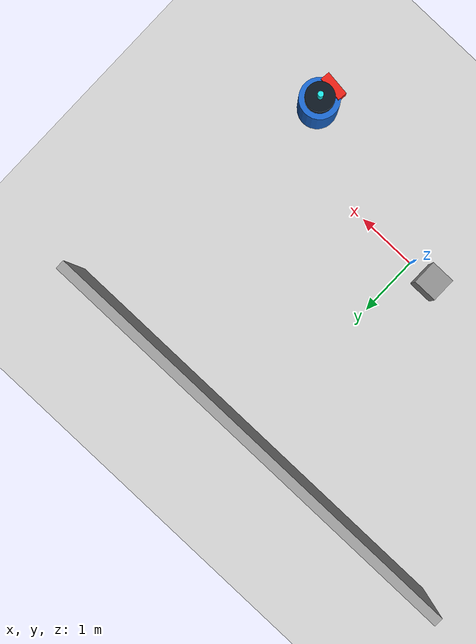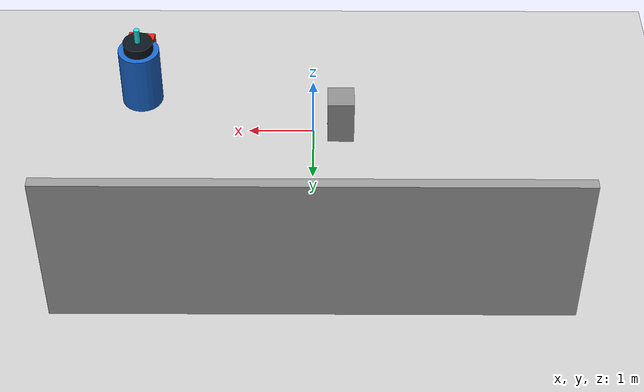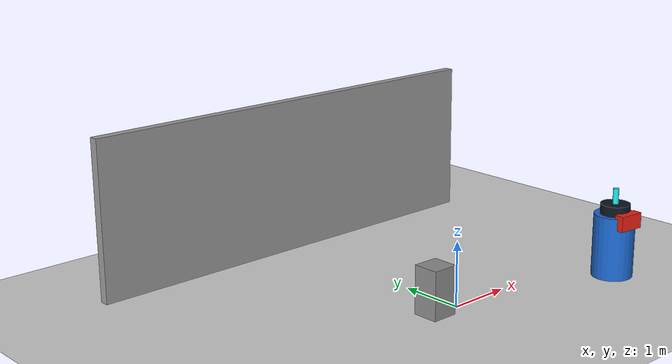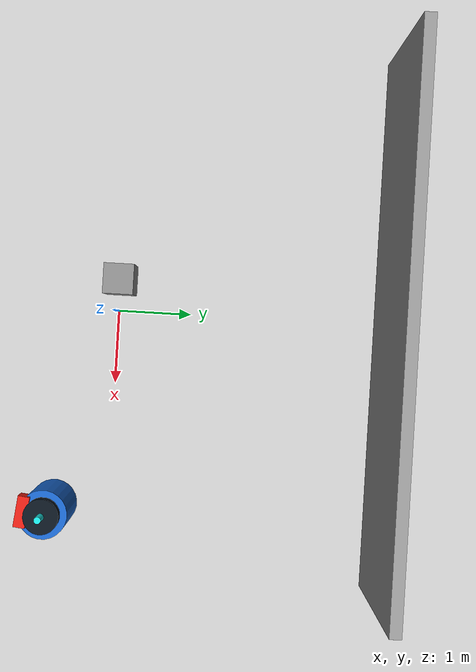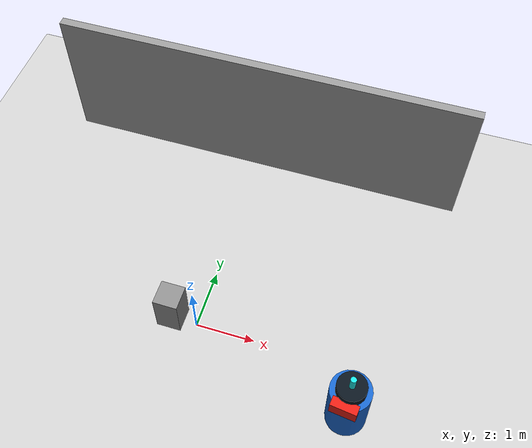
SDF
<sdf version="1.7">
 <world name="default">
  <plugin name="socnav_plugin" filename="libSocNavPlugin.so">
   <robot_name>robot</robot_name>
   <trajectory_file>/home/hunav_gz_classic_ws/SocNav3_trajectories/src6/000003845.json</trajectory_file>
   <human_slots>2</human_slots>
   <goal_angle_mesh>
    <angle_threshold>2.27777887545</angle_threshold>
    <uri>/home/hunav_gz_classic_ws/src/socnav_gazebo_reproducer/meshes/000003845_goal_angle_00.stl</uri>
   </goal_angle_mesh>
  </plugin>
  <light name="sun" type="directional">
   <pose>0 0 10 0 -0 0</pose>
   <diffuse>0.8 0.8 0.8 1</diffuse>
   <specular>0.2 0.2 0.2 1</specular>
   <attenuation>
    <range>1000</range>
    <constant>0.9</constant>
    <linear>0.01</linear>
    <quadratic>0.001</quadratic>
   </attenuation>
   <direction>-0.5 0.1 -0.9</direction>
   <spot><inner_angle>0</inner_angle><outer_angle>0</outer_angle><falloff>0</falloff></spot>
  </light>
  <model name="ground_plane">
   <static>1</static>
   <link name="link">
    <collision name="collision">
     <geometry><plane><normal>0 0 1</normal><size>100 100</size></plane></geometry>
     <surface><friction><ode><mu>100</mu><mu2>50</mu2></ode></friction></surface>
    </collision>
    <visual name="visual">
     <cast_shadows>0</cast_shadows>
     <geometry><plane><normal>0 0 1</normal><size>100 100</size></plane></geometry>
     <material>
      <script><uri>file://media/materials/scripts/kitchen.material</uri><name>Kitchen/CounterTop_H</name></script>
     </material>
    </visual>
   </link>
  </model>
  <gravity>0 0 -9.8</gravity>
  <magnetic_field>6e-06 2.3e-05 -4.2e-05</magnetic_field>
  <atmosphere type="adiabatic"/>
  <physics type="ode">
   <max_step_size>0.001</max_step_size>
   <real_time_factor>1</real_time_factor>
   <real_time_update_rate>1000</real_time_update_rate>
  </physics>
  <scene><ambient>0.4 0.4 0.4 1</ambient><background>0.7 0.7 0.7 1</background><shadows>1</shadows></scene>
  <audio><device>default</device></audio>
  <spherical_coordinates>
   <surface_model>EARTH_WGS84</surface_model>
   <latitude_deg>0</latitude_deg>
   <longitude_deg>0</longitude_deg>
   <elevation>0</elevation>
   <heading_deg>0</heading_deg>
  </spherical_coordinates>
  <model name="robot">
   <pose>2.720079823149502 -0.7633397182718211 0.5 0 0 -1.6856628404221388</pose>
   <link name="link">
    <collision name="collision">
     <geometry><cylinder><radius>0.3208102385994143</radius><length>1.0</length></cylinder></geometry>
    </collision>
    <visual name="visual">
     <geometry><cylinder><radius>0.3208102385994143</radius><length>1.0</length></cylinder></geometry>
     <material><ambient>0.1 0.4 0.8 1</ambient><diffuse>0.1 0.4 0.8 1</diffuse></material>
    </visual>
    <visual name="robot_top">
     <pose>0 0 0.58 0 0 0</pose>
     <geometry><cylinder><radius>0.2309833717915783</radius><length>0.16</length></cylinder></geometry>
     <material><ambient>0.04 0.08 0.12 1</ambient><diffuse>0.04 0.08 0.12 1</diffuse></material>
    </visual>
    <visual name="robot_front">
     <pose>0.269480600423508 0 0.44 0 0 0</pose>
     <geometry><box><size>0.15398891452771887 0.41063710540725035 0.24</size></box></geometry>
     <material><ambient>0.9 0.12 0.08 1</ambient><diffuse>0.9 0.12 0.08 1</diffuse></material>
    </visual>
    <visual name="robot_sensor">
     <pose>0 0 0.78 0 0 0</pose>
     <geometry><cylinder><radius>0.044913433403918006</radius><length>0.24</length></cylinder></geometry>
     <material><ambient>0.1 0.9 0.9 1</ambient><diffuse>0.1 0.9 0.9 1</diffuse></material>
    </visual>
   </link>
  </model>
  <model name="static_object_1">
   <static>true</static>
   <pose>-0.42332694954386163 0.025609679833193066 0.375 0 0 0</pose>
   <link name="link">
    <collision name="collision">
     <geometry><box><size>0.4066529532115594 0.4066529532115594 0.75</size></box></geometry>
    </collision>
    <visual name="visual">
     <geometry><box><size>0.4066529532115594 0.4066529532115594 0.75</size></box></geometry>
     <material><ambient>0.55 0.55 0.55 1</ambient><diffuse>0.55 0.55 0.55 1</diffuse></material>
    </visual>
   </link>
  </model>
  <model name="simple_world_test">
   <link name="Wall_0">
    <collision name="Wall_0_Collision">
     <geometry><box><size>7.290416850823391 0.15 2.5</size></box></geometry>
     <pose>0 0 1.25 0 -0 0</pose>
    </collision>
    <visual name="Wall_0_Visual">
     <pose>0 0 1.25 0 -0 0</pose>
     <geometry><box><size>7.290416850823391 0.15 2.5</size></box></geometry>
     <material>
      <script><uri>file://media/materials/scripts/gazebo.material</uri><name>Gazebo/Grey</name></script>
      <ambient>1 1 1 1</ambient>
     </material>
     <meta><layer>0</layer></meta>
    </visual>
    <pose>0.0 3.6352084254116956 0 0 -0 0.0</pose>
   </link>
   <static>1</static>
  </model>
 </world>
</sdf>
